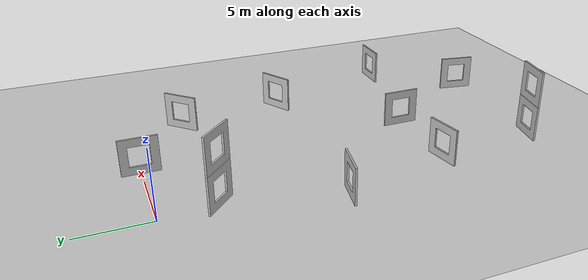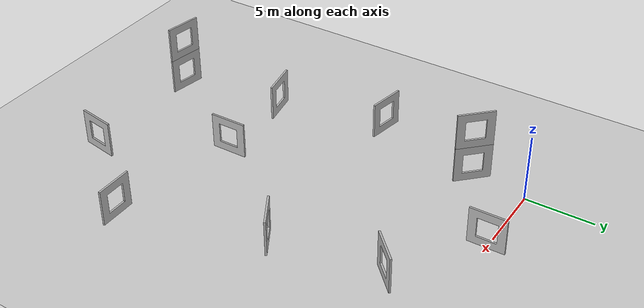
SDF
<?xml version="1.0" ?>
<sdf version="1.4">
  <world name="default">
    <gui fullscreen='0'>
      <camera name='user_camera'>
        <pose>-9.0 1.5 5.5 -0 0.33 -0.35</pose>
        <view_controller>orbit</view_controller>
        <projection_type>perspective</projection_type>
      </camera>
    </gui>

    <include>
      <uri>model://ground_plane</uri>
    </include>

    <light type="directional" name="sun_1">
      <cast_shadows>false</cast_shadows>
      <pose>8 14 50 0 0 0</pose>
      <diffuse>0.8 0.8 0.8 1</diffuse>
      <specular>0.8 0.8 0.8 1</specular>
      <direction>0.5 0.1 -0.9</direction>
    </light>

    <!-- Spawn gate - Currently, .dae is exported with +Y as the forward direction. You need to rotate yaw by 90 degrees to align it correctly.  -->
    <!-- Gate 1 -->
    <include>
      <uri>model://a2rl_gate</uri>
      <name>gate_1</name>
      <pose>6.0 0 1.5 0 0 1.5708</pose>
    </include>

    <!-- Gate 2 -->
    <include>
      <uri>model://a2rl_gate</uri>
      <name>gate_2</name>
      <pose>12 -4 1.5 0 0 0.7854</pose>
    </include>

    <!-- Gate 3 -->
    <include>
      <uri>model://a2rl_gate</uri>
      <name>gate_3</name>
      <pose>13.0 -12.0 1.5 0 0 0.5236</pose>
    </include>

    <!-- Gate 4 -->
    <include>
      <uri>model://a2rl_gate</uri>
      <name>gate_4</name>
      <pose>16.0 -22.0 1.5 0 0 0.0</pose>
    </include>

    <!-- Gate 5 -->
    <include>
      <uri>model://a2rl_gate</uri>
      <name>gate_5</name>
      <pose>11.0 -28.0 1.5 0 0 -1.7453</pose>
    </include>

    <!-- Gate 6 -->
    <include>
      <uri>model://a2rl_gate</uri>
      <name>gate_6</name>
      <pose>6.3 -20.0 1.5 0 0 -1.5708</pose>
    </include>

    <!-- Gate 7 top-->
    <include>
      <uri>model://a2rl_gate</uri>
      <name>gate_7_top</name>
      <pose>1.0 -28.0 4.2 0 0 -0.1745</pose>
    </include>

    <!-- Gate 7 bottom-->
    <include>
      <uri>model://a2rl_gate</uri>
      <name>gate_7_bottom</name>
      <pose>1.0 -28.0 1.5 0 0 -0.1745</pose>
    </include>

    <!-- Gate 8 -->
    <include>
      <uri>model://a2rl_gate</uri>
      <name>gate_8</name>
      <pose>0.0 -20.0 1.5 0 0 -2.9671</pose>
    </include>

    <!-- Gate 9 -->
    <include>
      <uri>model://a2rl_gate</uri>
      <name>gate_9</name>
      <pose>-2.0 -12.0 1.5 0 0 2.9671</pose>
    </include>

    <!-- Gate 10 top -->
    <include>
      <uri>model://a2rl_gate</uri>
      <name>gate_10_top</name>
      <pose>0.0 -4.0 4.2 0 0 2.3562</pose>
    </include>

    <!-- Gate 10 bottom -->
    <include>
      <uri>model://a2rl_gate</uri>
      <name>gate_10_bottom</name>
      <pose>0.0 -4.0 1.5 0 0 2.3562</pose>
    </include>

    <!-- Only one ROS interface plugin is required per world, as any other plugin can connect a Gazebo
         topic to a ROS topic (or vise versa). -->
    <plugin name="ros_interface_plugin" filename="librotors_gazebo_ros_interface_plugin.so"/>

    <spherical_coordinates>
      <surface_model>EARTH_WGS84</surface_model>
      <latitude_deg>47.3667</latitude_deg>
      <longitude_deg>8.5500</longitude_deg>
      <elevation>500.0</elevation>
      <heading_deg>0</heading_deg>
    </spherical_coordinates>
    <physics type='ode'>
      <ode>
        <solver>
          <type>quick</type>
          <iters>1000</iters>
          <sor>1.3</sor>
        </solver>
        <constraints>
          <cfm>0</cfm>
          <erp>0.2</erp>
          <contact_max_correcting_vel>100</contact_max_correcting_vel>
          <contact_surface_layer>0.001</contact_surface_layer>
        </constraints>
      </ode>
      <max_step_size>0.01</max_step_size>
      <real_time_factor>1</real_time_factor>
      <real_time_update_rate>100</real_time_update_rate>
      <gravity>0 0 -9.8</gravity>
    </physics>
  </world>
</sdf>

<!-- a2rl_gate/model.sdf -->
<sdf version="1.5">
  <model name="a2rl_gate">
    <static>true</static>
    <link name="gate_link">
      <visual name="gate_visual">
        <geometry>
          <mesh>
            <uri>model://a2rl_gate/meshes/a2rl_gate.dae</uri>
            <scale>1 1 1</scale>
          </mesh>
        </geometry>
        <material>
          <script>
            <uri>model://a2rl_gate/materials/textures/Frontdesign_Gate.png</uri>
          </script>
        </material>
      </visual>
    </link>
  </model>
</sdf>
